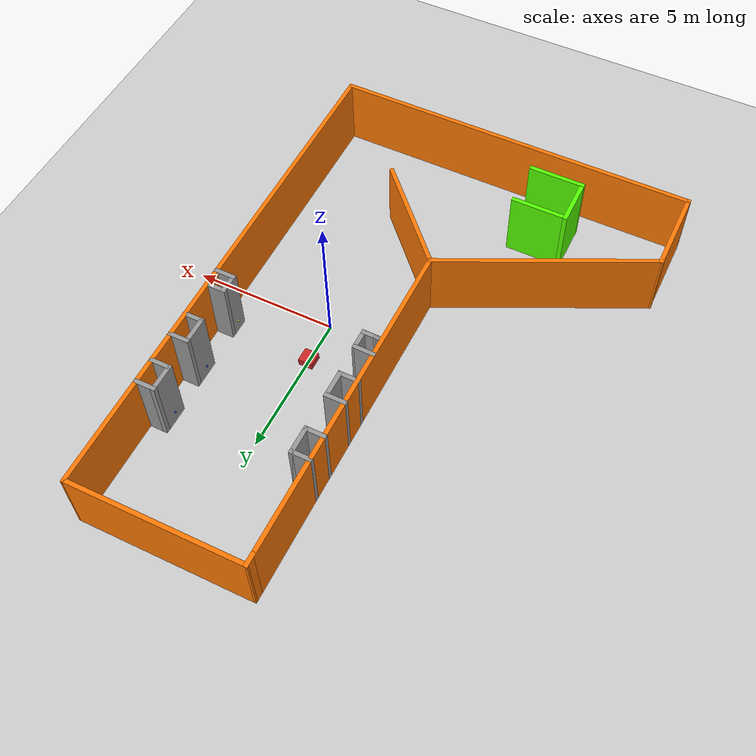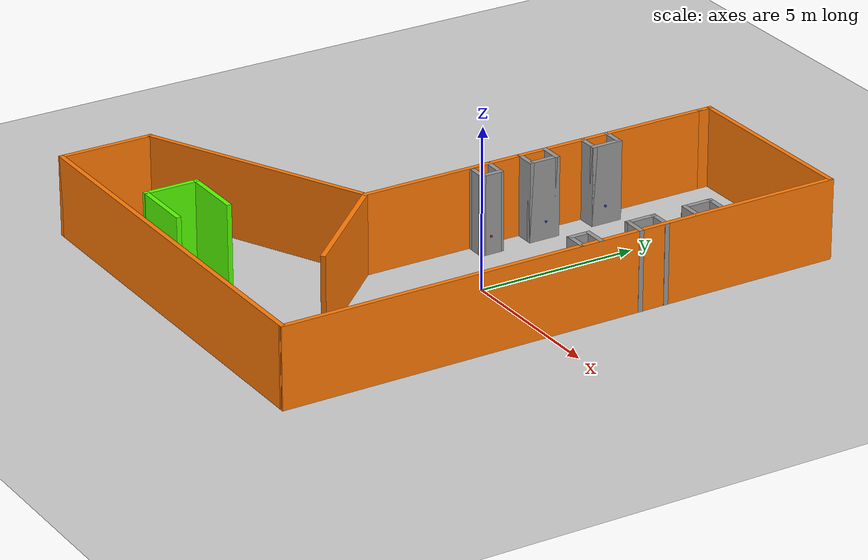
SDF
<sdf version="1.7">
 <world name="default">
  <light name="sun" type="directional">
   <pose>0 0 10 0 -0 0</pose>
   <diffuse>0.8 0.8 0.8 1</diffuse>
   <specular>0.2 0.2 0.2 1</specular>
   <attenuation>
    <range>1000</range>
    <constant>0.9</constant>
    <linear>0.01</linear>
    <quadratic>0.001</quadratic>
   </attenuation>
   <direction>-0.5 0.1 -0.9</direction>
   <spot><inner_angle>0</inner_angle><outer_angle>0</outer_angle><falloff>0</falloff></spot>
  </light>
  <model name="ground_plane">
   <static>1</static>
   <link name="link">
    <collision name="collision">
     <geometry><plane><normal>0 0 1</normal><size>100 100</size></plane></geometry>
     <surface>
      <contact><collide_bitmask>65535</collide_bitmask></contact>
      <friction><ode><mu>100</mu><mu2>50</mu2></ode></friction>
     </surface>
    </collision>
    <visual name="visual">
     <cast_shadows>0</cast_shadows>
     <geometry><plane><normal>0 0 1</normal><size>100 100</size></plane></geometry>
     <material>
      <script><uri>file://media/materials/scripts/gazebo.material</uri><name>Gazebo/Grey</name></script>
     </material>
    </visual>
   </link>
  </model>
  <gravity>0 0 -9.8</gravity>
  <magnetic_field>6e-06 2.3e-05 -4.2e-05</magnetic_field>
  <atmosphere type="adiabatic"/>
  <physics type="ode">
   <max_step_size>0.001</max_step_size>
   <real_time_factor>1</real_time_factor>
   <real_time_update_rate>1000</real_time_update_rate>
  </physics>
  <scene><ambient>0.4 0.4 0.4 1</ambient><background>0.7 0.7 0.7 1</background><shadows>1</shadows></scene>
  <spherical_coordinates>
   <surface_model>EARTH_WGS84</surface_model>
   <latitude_deg>0</latitude_deg>
   <longitude_deg>0</longitude_deg>
   <elevation>0</elevation>
   <heading_deg>0</heading_deg>
  </spherical_coordinates>
  <model name="Second_Wrold">
   <pose>-2.95303 0.559566 0 0 -0 0</pose>
   <link name="Wall_11">
    <collision name="Wall_11_Collision">
     <geometry><box><size>3 0.15 2.5</size></box></geometry>
     <pose>0 0 1.25 0 -0 0</pose>
    </collision>
    <visual name="Wall_11_Visual">
     <pose>0 0 1.25 0 -0 0</pose>
     <geometry><box><size>3 0.15 2.5</size></box></geometry>
     <material>
      <script><uri>file://media/materials/scripts/gazebo.material</uri><name>Gazebo/Grey</name></script>
      <ambient>0.996078 0.47451 0.0196078 1</ambient>
     </material>
     <meta><layer>0</layer></meta>
    </visual>
    <pose>-6.38061 -7.50015 0 0 -0 1.5708</pose>
   </link>
   <link name="Wall_12">
    <collision name="Wall_12_Collision">
     <geometry><box><size>7.64166 0.15 2.5</size></box></geometry>
     <pose>0 0 1.25 0 -0 0</pose>
    </collision>
    <visual name="Wall_12_Visual">
     <pose>0 0 1.25 0 -0 0</pose>
     <geometry><box><size>7.64166 0.15 2.5</size></box></geometry>
     <material>
      <script><uri>file://media/materials/scripts/gazebo.material</uri><name>Gazebo/Grey</name></script>
      <ambient>0.996078 0.47451 0.0196078 1</ambient>
     </material>
     <meta><layer>0</layer></meta>
    </visual>
    <pose>-3.00561 -4.45015 0 0 -0 0.448723</pose>
   </link>
   <link name="Wall_13">
    <collision name="Wall_13_Collision">
     <geometry><box><size>4.28793 0.15 2.5</size></box></geometry>
     <pose>0 0 1.25 0 -0 0</pose>
    </collision>
    <visual name="Wall_13_Visual">
     <pose>0 0 1.25 0 -0 0</pose>
     <geometry><box><size>4.28793 0.15 2.5</size></box></geometry>
     <material>
      <script><uri>file://media/materials/scripts/gazebo.material</uri><name>Gazebo/Grey</name></script>
      <ambient>0.996078 0.47451 0.0196078 1</ambient>
     </material>
     <meta><layer>0</layer></meta>
    </visual>
    <pose>1.79439 -4.32515 0 0 -0 -0.811034</pose>
   </link>
   <link name="Wall_16">
    <collision name="Wall_16_Collision">
     <geometry><box><size>0.75 0.15 2.5</size></box></geometry>
     <pose>0 0 1.25 0 -0 0</pose>
    </collision>
    <visual name="Wall_16_Visual">
     <pose>0 0 1.25 0 -0 0</pose>
     <geometry><box><size>0.75 0.15 2.5</size></box></geometry>
     <material>
      <script><uri>file://media/materials/scripts/gazebo.material</uri><name>Gazebo/Grey</name></script>
      <ambient>1 1 1 1</ambient>
     </material>
     <meta><layer>0</layer></meta>
    </visual>
    <pose>0.668499 5.28654 0 0 -0 0</pose>
   </link>
   <link name="Wall_17">
    <collision name="Wall_17_Collision">
     <geometry><box><size>1 0.15 2.5</size></box></geometry>
     <pose>0 0 1.25 0 -0 0</pose>
    </collision>
    <visual name="Wall_17_Visual">
     <pose>0 0 1.25 0 -0 0</pose>
     <geometry><box><size>1 0.15 2.5</size></box></geometry>
     <material>
      <script><uri>file://media/materials/scripts/gazebo.material</uri><name>Gazebo/Grey</name></script>
      <ambient>1 1 1 1</ambient>
     </material>
     <meta><layer>0</layer></meta>
    </visual>
    <pose>0.968499 4.86154 0 0 -0 -1.5708</pose>
   </link>
   <link name="Wall_18">
    <collision name="Wall_18_Collision">
     <geometry><box><size>0.75 0.15 2.5</size></box></geometry>
     <pose>0 0 1.25 0 -0 0</pose>
    </collision>
    <visual name="Wall_18_Visual">
     <pose>0 0 1.25 0 -0 0</pose>
     <geometry><box><size>0.75 0.15 2.5</size></box></geometry>
     <material>
      <script><uri>file://media/materials/scripts/gazebo.material</uri><name>Gazebo/Grey</name></script>
      <ambient>1 1 1 1</ambient>
     </material>
     <meta><layer>0</layer></meta>
    </visual>
    <pose>0.668499 4.43654 0 0 -0 3.14159</pose>
   </link>
   <link name="Wall_20">
    <collision name="Wall_20_Collision">
     <geometry><box><size>0.75 0.15 2.5</size></box></geometry>
     <pose>0 0 1.25 0 -0 0</pose>
    </collision>
    <visual name="Wall_20_Visual">
     <pose>0 0 1.25 0 -0 0</pose>
     <geometry><box><size>0.75 0.15 2.5</size></box></geometry>
     <material>
      <script><uri>file://media/materials/scripts/gazebo.material</uri><name>Gazebo/Grey</name></script>
      <ambient>1 1 1 1</ambient>
     </material>
     <meta><layer>0</layer></meta>
    </visual>
    <pose>0.668499 3.15852 0 0 -0 0</pose>
   </link>
   <link name="Wall_21">
    <collision name="Wall_21_Collision">
     <geometry><box><size>1 0.15 2.5</size></box></geometry>
     <pose>0 0 1.25 0 -0 0</pose>
    </collision>
    <visual name="Wall_21_Visual">
     <pose>0 0 1.25 0 -0 0</pose>
     <geometry><box><size>1 0.15 2.5</size></box></geometry>
     <material>
      <script><uri>file://media/materials/scripts/gazebo.material</uri><name>Gazebo/Grey</name></script>
      <ambient>1 1 1 1</ambient>
     </material>
     <meta><layer>0</layer></meta>
    </visual>
    <pose>0.968499 2.73352 0 0 -0 -1.5708</pose>
   </link>
   <link name="Wall_22">
    <collision name="Wall_22_Collision">
     <geometry><box><size>0.75 0.15 2.5</size></box></geometry>
     <pose>0 0 1.25 0 -0 0</pose>
    </collision>
    <visual name="Wall_22_Visual">
     <pose>0 0 1.25 0 -0 0</pose>
     <geometry><box><size>0.75 0.15 2.5</size></box></geometry>
     <material>
      <script><uri>file://media/materials/scripts/gazebo.material</uri><name>Gazebo/Grey</name></script>
      <ambient>1 1 1 1</ambient>
     </material>
     <meta><layer>0</layer></meta>
    </visual>
    <pose>0.668499 2.30852 0 0 -0 3.14159</pose>
   </link>
   <link name="Wall_24">
    <collision name="Wall_24_Collision">
     <geometry><box><size>0.788168 0.15 2.5</size></box></geometry>
     <pose>0 0 1.25 0 -0 0</pose>
    </collision>
    <visual name="Wall_24_Visual">
     <pose>0 0 1.25 0 -0 0</pose>
     <geometry><box><size>0.788168 0.15 2.5</size></box></geometry>
     <material>
      <script><uri>file://media/materials/scripts/gazebo.material</uri><name>Gazebo/Grey</name></script>
      <ambient>1 1 1 1</ambient>
     </material>
     <meta><layer>0</layer></meta>
    </visual>
    <pose>0.691048 1.24516 0 0 -0 -0.017475</pose>
   </link>
   <link name="Wall_25">
    <collision name="Wall_25_Collision">
     <geometry><box><size>0.75 0.15 2.5</size></box></geometry>
     <pose>0 0 1.25 0 -0 0</pose>
    </collision>
    <visual name="Wall_25_Visual">
     <pose>0 0 1.25 0 -0 0</pose>
     <geometry><box><size>0.75 0.15 2.5</size></box></geometry>
     <material>
      <script><uri>file://media/materials/scripts/gazebo.material</uri><name>Gazebo/Grey</name></script>
      <ambient>1 1 1 1</ambient>
     </material>
     <meta><layer>0</layer></meta>
    </visual>
    <pose>1.01008 0.939588 0 0 -0 -1.5708</pose>
   </link>
   <link name="Wall_26">
    <collision name="Wall_26_Collision">
     <geometry><box><size>0.594788 0.15 2.5</size></box></geometry>
     <pose>0 0 1.25 0 -0 0</pose>
    </collision>
    <visual name="Wall_26_Visual">
     <pose>0 0 1.25 0 -0 0</pose>
     <geometry><box><size>0.594788 0.15 2.5</size></box></geometry>
     <material>
      <script><uri>file://media/materials/scripts/gazebo.material</uri><name>Gazebo/Grey</name></script>
      <ambient>1 1 1 1</ambient>
     </material>
     <meta><layer>0</layer></meta>
    </visual>
    <pose>0.78769 0.642376 0 0 -0 3.13741</pose>
   </link>
   <link name="Wall_27">
    <collision name="Wall_27_Collision">
     <geometry><box><size>0.25 0.15 2.5</size></box></geometry>
     <pose>0 0 1.25 0 -0 0</pose>
    </collision>
    <visual name="Wall_27_Visual">
     <pose>0 0 1.25 0 -0 0</pose>
     <geometry><box><size>0.25 0.15 2.5</size></box></geometry>
     <material>
      <script><uri>file://media/materials/scripts/gazebo.material</uri><name>Gazebo/Grey</name></script>
      <ambient>1 1 1 1</ambient>
     </material>
     <meta><layer>0</layer></meta>
    </visual>
    <pose>0.515298 0.643305 0 0 -0 3.14159</pose>
   </link>
   <link name="Wall_3">
    <collision name="Wall_3_Collision">
     <geometry><box><size>12.8828 0.15 2.5</size></box></geometry>
     <pose>0 0 1.25 0 -0 0</pose>
    </collision>
    <visual name="Wall_3_Visual">
     <pose>0 0 1.25 0 -0 0</pose>
     <geometry><box><size>12.8828 0.15 2.5</size></box></geometry>
     <material>
      <script><uri>file://media/materials/scripts/gazebo.material</uri><name>Gazebo/Grey</name></script>
      <ambient>0.996078 0.47451 0.0196078 1</ambient>
     </material>
     <meta><layer>0</layer></meta>
    </visual>
    <pose>-0.014214 -8.92515 0 0 -0 0</pose>
   </link>
   <link name="Wall_31">
    <collision name="Wall_31_Collision">
     <geometry><box><size>2 0.15 2.5</size></box></geometry>
     <pose>0 0 1.25 0 -0 0</pose>
    </collision>
    <visual name="Wall_31_Visual">
     <pose>0 0 1.25 0 -0 0</pose>
     <geometry><box><size>2 0.15 2.5</size></box></geometry>
     <material>
      <script><uri>file://media/materials/scripts/gazebo.material</uri><name>Gazebo/Grey</name></script>
      <ambient>0.333333 1 0 1</ambient>
     </material>
     <meta><layer>0</layer></meta>
    </visual>
    <pose>-1.99025 -8.04068 0 0 -0 0</pose>
   </link>
   <link name="Wall_34">
    <collision name="Wall_34_Collision">
     <geometry><box><size>1.75 0.15 2.5</size></box></geometry>
     <pose>0 0 1.25 0 -0 0</pose>
    </collision>
    <visual name="Wall_34_Visual">
     <pose>0 0 1.25 0 -0 0</pose>
     <geometry><box><size>1.75 0.15 2.5</size></box></geometry>
     <material>
      <script><uri>file://media/materials/scripts/gazebo.material</uri><name>Gazebo/Grey</name></script>
      <ambient>0.333333 1 0 1</ambient>
     </material>
     <meta><layer>0</layer></meta>
    </visual>
    <pose>-2.91525 -7.24068 0 0 -0 1.5708</pose>
   </link>
   <link name="Wall_35">
    <collision name="Wall_35_Collision">
     <geometry><box><size>2 0.15 2.5</size></box></geometry>
     <pose>0 0 1.25 0 -0 0</pose>
    </collision>
    <visual name="Wall_35_Visual">
     <pose>0 0 1.25 0 -0 0</pose>
     <geometry><box><size>2 0.15 2.5</size></box></geometry>
     <material>
      <script><uri>file://media/materials/scripts/gazebo.material</uri><name>Gazebo/Grey</name></script>
      <ambient>0.333333 1 0 1</ambient>
     </material>
     <meta><layer>0</layer></meta>
    </visual>
    <pose>-1.99025 -6.44068 0 0 -0 0</pose>
   </link>
   <link name="Wall_4">
    <collision name="Wall_4_Collision">
     <geometry><box><size>18.0002 0.15 2.5</size></box></geometry>
     <pose>0 0 1.25 0 -0 0</pose>
    </collision>
    <visual name="Wall_4_Visual">
     <pose>0 0 1.25 0 -0 0</pose>
     <geometry><box><size>18.0002 0.15 2.5</size></box></geometry>
     <material>
      <script><uri>file://media/materials/scripts/gazebo.material</uri><name>Gazebo/Grey</name></script>
      <ambient>0.996078 0.47451 0.0196078 1</ambient>
     </material>
     <meta><layer>0</layer></meta>
    </visual>
    <pose>6.36493 -0.000147 0 0 -0 1.57533</pose>
   </link>
   <link name="Wall_40">
    <collision name="Wall_40_Collision">
     <geometry><box><size>0.75 0.15 2.5</size></box></geometry>
     <pose>0 0 1.25 0 -0 0</pose>
    </collision>
    <visual name="Wall_40_Visual">
     <pose>0 0 1.25 0 -0 0</pose>
     <geometry><box><size>0.75 0.15 2.5</size></box></geometry>
     <material>
      <script><uri>file://media/materials/scripts/gazebo.material</uri><name>Gazebo/Grey</name></script>
      <ambient>1 1 1 1</ambient>
     </material>
     <meta><layer>0</layer></meta>
    </visual>
    <pose>6.02791 5.23177 0 0 -0 3.14159</pose>
   </link>
   <link name="Wall_41">
    <collision name="Wall_41_Collision">
     <geometry><box><size>1 0.15 2.5</size></box></geometry>
     <pose>0 0 1.25 0 -0 0</pose>
    </collision>
    <visual name="Wall_41_Visual">
     <pose>0 0 1.25 0 -0 0</pose>
     <geometry><box><size>1 0.15 2.5</size></box></geometry>
     <material>
      <script><uri>file://media/materials/scripts/gazebo.material</uri><name>Gazebo/Grey</name></script>
      <ambient>1 1 1 1</ambient>
     </material>
     <meta><layer>0</layer></meta>
    </visual>
    <pose>5.72791 4.80678 0 0 -0 -1.5708</pose>
   </link>
   <link name="Wall_42">
    <collision name="Wall_42_Collision">
     <geometry><box><size>0.75 0.15 2.5</size></box></geometry>
     <pose>0 0 1.25 0 -0 0</pose>
    </collision>
    <visual name="Wall_42_Visual">
     <pose>0 0 1.25 0 -0 0</pose>
     <geometry><box><size>0.75 0.15 2.5</size></box></geometry>
     <material>
      <script><uri>file://media/materials/scripts/gazebo.material</uri><name>Gazebo/Grey</name></script>
      <ambient>1 1 1 1</ambient>
     </material>
     <meta><layer>0</layer></meta>
    </visual>
    <pose>6.02791 4.38178 0 0 -0 0</pose>
   </link>
   <link name="Wall_44">
    <collision name="Wall_44_Collision">
     <geometry><box><size>0.75 0.15 2.5</size></box></geometry>
     <pose>0 0 1.25 0 -0 0</pose>
    </collision>
    <visual name="Wall_44_Visual">
     <pose>0 0 1.25 0 -0 0</pose>
     <geometry><box><size>0.75 0.15 2.5</size></box></geometry>
     <material>
      <script><uri>file://media/materials/scripts/gazebo.material</uri><name>Gazebo/Grey</name></script>
      <ambient>1 1 1 1</ambient>
     </material>
     <meta><layer>0</layer></meta>
    </visual>
    <pose>6.05774 3.31267 0 0 -0 3.14159</pose>
   </link>
   <link name="Wall_45">
    <collision name="Wall_45_Collision">
     <geometry><box><size>1 0.15 2.5</size></box></geometry>
     <pose>0 0 1.25 0 -0 0</pose>
    </collision>
    <visual name="Wall_45_Visual">
     <pose>0 0 1.25 0 -0 0</pose>
     <geometry><box><size>1 0.15 2.5</size></box></geometry>
     <material>
      <script><uri>file://media/materials/scripts/gazebo.material</uri><name>Gazebo/Grey</name></script>
      <ambient>1 1 1 1</ambient>
     </material>
     <meta><layer>0</layer></meta>
    </visual>
    <pose>5.75774 2.88767 0 0 -0 -1.5708</pose>
   </link>
   <link name="Wall_46">
    <collision name="Wall_46_Collision">
     <geometry><box><size>0.75 0.15 2.5</size></box></geometry>
     <pose>0 0 1.25 0 -0 0</pose>
    </collision>
    <visual name="Wall_46_Visual">
     <pose>0 0 1.25 0 -0 0</pose>
     <geometry><box><size>0.75 0.15 2.5</size></box></geometry>
     <material>
      <script><uri>file://media/materials/scripts/gazebo.material</uri><name>Gazebo/Grey</name></script>
      <ambient>1 1 1 1</ambient>
     </material>
     <meta><layer>0</layer></meta>
    </visual>
    <pose>6.05774 2.46267 0 0 -0 0</pose>
   </link>
   <link name="Wall_48">
    <collision name="Wall_48_Collision">
     <geometry><box><size>0.75 0.15 2.5</size></box></geometry>
     <pose>0 0 1.25 0 -0 0</pose>
    </collision>
    <visual name="Wall_48_Visual">
     <pose>0 0 1.25 0 -0 0</pose>
     <geometry><box><size>0.75 0.15 2.5</size></box></geometry>
     <material>
      <script><uri>file://media/materials/scripts/gazebo.material</uri><name>Gazebo/Grey</name></script>
      <ambient>1 1 1 1</ambient>
     </material>
     <meta><layer>0</layer></meta>
    </visual>
    <pose>6.04779 1.15493 0 0 -0 3.14159</pose>
   </link>
   <link name="Wall_49">
    <collision name="Wall_49_Collision">
     <geometry><box><size>0.75 0.15 2.5</size></box></geometry>
     <pose>0 0 1.25 0 -0 0</pose>
    </collision>
    <visual name="Wall_49_Visual">
     <pose>0 0 1.25 0 -0 0</pose>
     <geometry><box><size>0.75 0.15 2.5</size></box></geometry>
     <material>
      <script><uri>file://media/materials/scripts/gazebo.material</uri><name>Gazebo/Grey</name></script>
      <ambient>1 1 1 1</ambient>
     </material>
     <meta><layer>0</layer></meta>
    </visual>
    <pose>5.74779 0.854926 0 0 -0 -1.5708</pose>
   </link>
   <link name="Wall_50">
    <collision name="Wall_50_Collision">
     <geometry><box><size>0.75 0.15 2.5</size></box></geometry>
     <pose>0 0 1.25 0 -0 0</pose>
    </collision>
    <visual name="Wall_50_Visual">
     <pose>0 0 1.25 0 -0 0</pose>
     <geometry><box><size>0.75 0.15 2.5</size></box></geometry>
     <material>
      <script><uri>file://media/materials/scripts/gazebo.material</uri><name>Gazebo/Grey</name></script>
      <ambient>1 1 1 1</ambient>
     </material>
     <meta><layer>0</layer></meta>
    </visual>
    <pose>6.04779 0.554926 0 0 -0 0</pose>
   </link>
   <link name="Wall_7">
    <collision name="Wall_7_Collision">
     <geometry><box><size>11.5 0.15 2.5</size></box></geometry>
     <pose>0 0 1.25 0 -0 0</pose>
    </collision>
    <visual name="Wall_7_Visual">
     <pose>0 0 1.25 0 -0 0</pose>
     <geometry><box><size>11.5 0.15 2.5</size></box></geometry>
     <material>
      <script><uri>file://media/materials/scripts/gazebo.material</uri><name>Gazebo/Grey</name></script>
      <ambient>0.996078 0.47451 0.0196078 1</ambient>
     </material>
     <meta><layer>0</layer></meta>
    </visual>
    <pose>0.36939 2.84985 0 0 -0 1.5708</pose>
   </link>
   <link name="Wall_8">
    <collision name="Wall_8_Collision">
     <geometry><box><size>0.5 0.15 2.5</size></box></geometry>
     <pose>0 0 1.25 0 -0 0</pose>
    </collision>
    <visual name="Wall_8_Visual">
     <pose>0 0 1.25 0 -0 0</pose>
     <geometry><box><size>0.5 0.15 2.5</size></box></geometry>
     <material>
      <script><uri>file://media/materials/scripts/gazebo.material</uri><name>Gazebo/Grey</name></script>
      <ambient>0.996078 0.47451 0.0196078 1</ambient>
     </material>
     <meta><layer>0</layer></meta>
    </visual>
    <pose>0.36939 8.69985 0 0 -0 1.5708</pose>
   </link>
   <link name="Wall_9">
    <collision name="Wall_9_Collision">
     <geometry><box><size>6.05209 0.15 2.5</size></box></geometry>
     <pose>0 0 1.25 0 -0 0</pose>
    </collision>
    <visual name="Wall_9_Visual">
     <pose>0 0 1.25 0 -0 0</pose>
     <geometry><box><size>6.05209 0.15 2.5</size></box></geometry>
     <material>
      <script><uri>file://media/materials/scripts/gazebo.material</uri><name>Gazebo/Grey</name></script>
      <ambient>0.996078 0.47451 0.0196078 1</ambient>
     </material>
     <meta><layer>0</layer></meta>
    </visual>
    <pose>3.32033 8.89985 0 0 -0 0.008472</pose>
   </link>
   <static>1</static>
  </model>
  <model name="Box">
   <pose>0 1.5 0 0 -0 0</pose>
   <link name="Box">
    <inertial>
     <mass>1</mass>
     <inertia>
      <ixx>0.0833333</ixx>
      <ixy>0</ixy>
      <ixz>0</ixz>
      <iyy>0.0833333</iyy>
      <iyz>0</iyz>
      <izz>0.0833333</izz>
     </inertia>
    </inertial>
    <collision name="Box_Collision"><geometry><box><size>0.5 0.5 0.5</size></box></geometry></collision>
    <visual name="Box_Visual">
     <geometry><box><size>0.5 0.5 0.5</size></box></geometry>
     <material>
      <script><uri>file://media/materials/scripts/gazebo.material</uri><name>Gazebo/RED</name></script>
      <ambient>1 1 1 1</ambient>
     </material>
     <meta><layer>0</layer></meta>
    </visual>
   </link>
   <static>0</static>
  </model>
  <model name="Room1Box">
   <pose>-1.834246 1.440730 0.554266 0 -0 -1.570801</pose>
   <link name="Room1Box">
    <inertial>
     <mass>1</mass>
     <inertia>
      <ixx>0.0833333</ixx>
      <ixy>0</ixy>
      <ixz>0</ixz>
      <iyy>0.0833333</iyy>
      <iyz>0</iyz>
      <izz>0.0833333</izz>
     </inertia>
    </inertial>
    <collision name="Room1Box_Collision">
     <geometry><box><size>0.05 0.05 0.05</size></box></geometry>
     <pose>0 0 0.025 0 0 0</pose>
    </collision>
    <visual name="Room1Box_Visual">
     <pose>0 0 0.025 0 0 0</pose>
     <geometry><box><size>0.05 0.05 0.05</size></box></geometry>
     <material>
      <script><uri>file://media/materials/scripts/gazebo.material</uri><name>Gazebo/Red</name></script>
      <ambient>1 0 0 1</ambient>
     </material>
     <meta><layer>0</layer></meta>
    </visual>
   </link>
   <static>true</static>
  </model>
  <model name="Room2Box">
   <pose>-1.861298 3.310347 0.554266 0 -0 -1.570801</pose>
   <link name="Room2Box">
    <inertial>
     <mass>1</mass>
     <inertia>
      <ixx>0.0833333</ixx>
      <ixy>0</ixy>
      <ixz>0</ixz>
      <iyy>0.0833333</iyy>
      <iyz>0</iyz>
      <izz>0.0833333</izz>
     </inertia>
    </inertial>
    <collision name="Room2Box_Collision">
     <geometry><box><size>0.05 0.05 0.05</size></box></geometry>
     <pose>0 0 0.025 0 0 0</pose>
    </collision>
    <visual name="Room2Box_Visual">
     <pose>0 0 0.025 0 0 0</pose>
     <geometry><box><size>0.05 0.05 0.05</size></box></geometry>
     <material>
      <script><uri>file://media/materials/scripts/gazebo.material</uri><name>Gazebo/Blue</name></script>
      <ambient>0 0 1 1</ambient>
     </material>
     <meta><layer>0</layer></meta>
    </visual>
   </link>
   <static>true</static>
  </model>
  <model name="Room3Box">
   <pose>-1.861288 5.353190 0.554266 0 -0 -1.570801</pose>
   <link name="Room3Box">
    <inertial>
     <mass>1</mass>
     <inertia>
      <ixx>0.0833333</ixx>
      <ixy>0</ixy>
      <ixz>0</ixz>
      <iyy>0.0833333</iyy>
      <iyz>0</iyz>
      <izz>0.0833333</izz>
     </inertia>
    </inertial>
    <collision name="Room3Box_Collision">
     <geometry><box><size>0.05 0.05 0.05</size></box></geometry>
     <pose>0 0 0.025 0 0 0</pose>
    </collision>
    <visual name="Room3Box_Visual">
     <pose>0 0 0.025 0 0 0</pose>
     <geometry><box><size>0.05 0.05 0.05</size></box></geometry>
     <material>
      <script><uri>file://media/materials/scripts/gazebo.material</uri><name>Gazebo/Blue</name></script>
      <ambient>0.25 1 0.25 1</ambient>
     </material>
     <meta><layer>0</layer></meta>
    </visual>
   </link>
   <static>true</static>
  </model>
  <model name="Room4Box">
   <pose>2.624382 5.353169 0.554266 0 -0 -1.570801</pose>
   <link name="Room4Box">
    <inertial>
     <mass>1</mass>
     <inertia>
      <ixx>0.0833333</ixx>
      <ixy>0</ixy>
      <ixz>0</ixz>
      <iyy>0.0833333</iyy>
      <iyz>0</iyz>
      <izz>0.0833333</izz>
     </inertia>
    </inertial>
    <collision name="Room4Box_Collision">
     <geometry><box><size>0.05 0.05 0.05</size></box></geometry>
     <pose>0 0 0.025 0 0 0</pose>
    </collision>
    <visual name="Room4Box_Visual">
     <pose>0 0 0.025 0 0 0</pose>
     <geometry><box><size>0.05 0.05 0.05</size></box></geometry>
     <material>
      <script><uri>file://media/materials/scripts/gazebo.material</uri><name>Gazebo/Blue</name></script>
      <ambient>1 0 1 1</ambient>
     </material>
     <meta><layer>0</layer></meta>
    </visual>
   </link>
   <static>true</static>
  </model>
  <model name="Room5Box">
   <pose>2.644843 3.443352 0.554266 0 -0 -1.570801</pose>
   <link name="Room5Box">
    <inertial>
     <mass>1</mass>
     <inertia>
      <ixx>0.0833333</ixx>
      <ixy>0</ixy>
      <ixz>0</ixz>
      <iyy>0.0833333</iyy>
      <iyz>0</iyz>
      <izz>0.0833333</izz>
     </inertia>
    </inertial>
    <collision name="Room5Box_Collision">
     <geometry><box><size>0.05 0.05 0.05</size></box></geometry>
     <pose>0 0 0.025 0 0 0</pose>
    </collision>
    <visual name="Room5Box_Visual">
     <pose>0 0 0.025 0 0 0</pose>
     <geometry><box><size>0.05 0.05 0.05</size></box></geometry>
     <material>
      <script><uri>file://media/materials/scripts/gazebo.material</uri><name>Gazebo/Blue</name></script>
      <ambient>0 0 0 1</ambient>
     </material>
     <meta><layer>0</layer></meta>
    </visual>
   </link>
   <static>true</static>
  </model>
  <model name="Room6Box">
   <pose>2.644833 1.440473 0.554266 0 -0 -1.570801</pose>
   <link name="Room6Box">
    <inertial>
     <mass>1</mass>
     <inertia>
      <ixx>0.0833333</ixx>
      <ixy>0</ixy>
      <ixz>0</ixz>
      <iyy>0.0833333</iyy>
      <iyz>0</iyz>
      <izz>0.0833333</izz>
     </inertia>
    </inertial>
    <collision name="Room6Box_Collision">
     <geometry><box><size>0.05 0.05 0.05</size></box></geometry>
     <pose>0 0 0.025 0 0 0</pose>
    </collision>
    <visual name="Room6Box_Visual">
     <pose>0 0 0.025 0 0 0</pose>
     <geometry><box><size>0.05 0.05 0.05</size></box></geometry>
     <material>
      <script><uri>file://media/materials/scripts/gazebo.material</uri><name>Gazebo/Yellow</name></script>
      <ambient>1 1 0 1</ambient>
     </material>
     <meta><layer>0</layer></meta>
    </visual>
   </link>
   <static>true</static>
  </model>
 </world>
</sdf>
